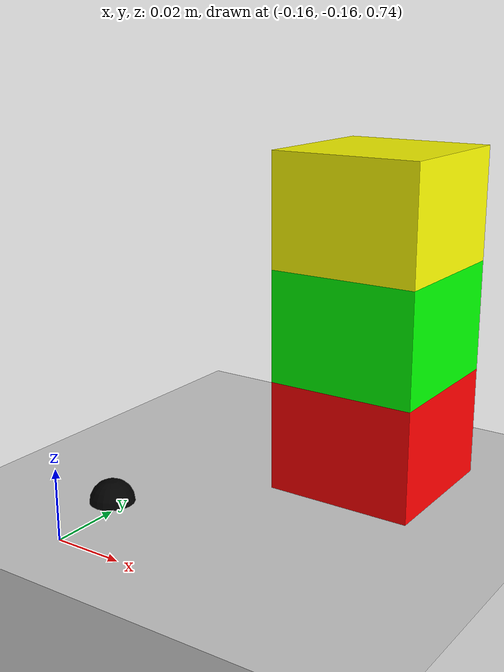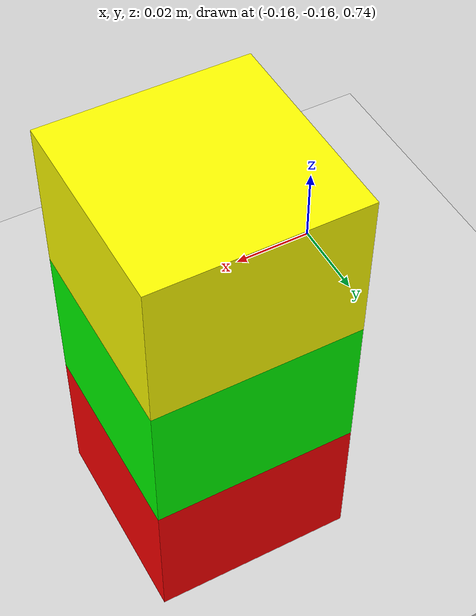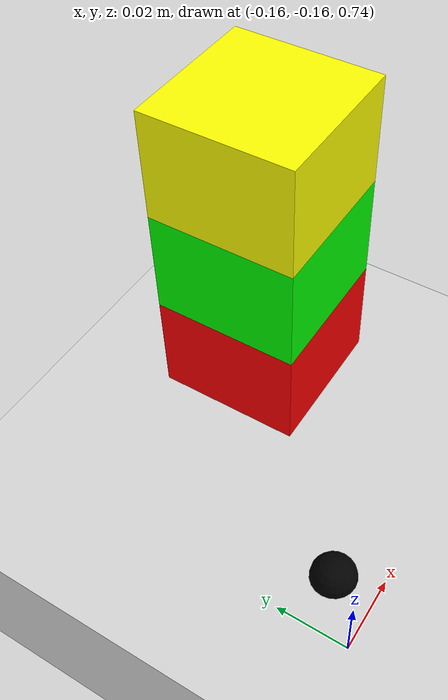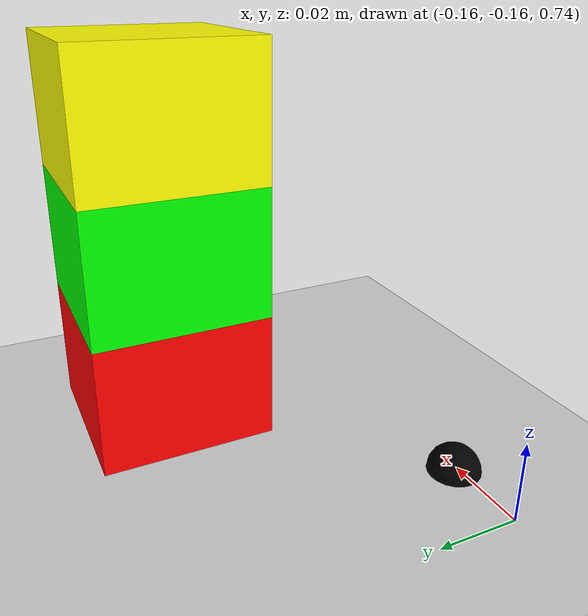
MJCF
<mujoco model="exp1_goal">
  <option timestep="0.01" gravity="0 0 -9.81"/>

  <worldbody>
    <light pos="0 0 2" dir="0 0 -1"/>

    <!-- Table: top surface at z = 0.75 (body center at 0.725 with thickness 0.05) -->
    <body name="table" pos="0 0 0.725">
      <geom name="table_geom" type="box" size="0.6 0.6 0.025" rgba="0.85 0.85 0.85 1"/>
    </body>

    <!-- Grid origin marker: (x0,y0) used to compute integer cell indices -->
    <body name="build_origin" pos="-0.15 -0.15 0.75">
      <geom type="sphere" size="0.006" rgba="0 0 0 1" contype="0" conaffinity="0"/>
    </body>

    <!-- Layer 1 -->
    <body name="block_red_01" pos="-0.10 -0.10 0.765">
      <geom type="box" size="0.02 0.02 0.015" rgba="1 0 0 1" contype="0" conaffinity="0"/>
    </body>

    <!-- Layer 2 -->
    <body name="block_green_01" pos="-0.10 -0.10 0.795">
      <geom type="box" size="0.02 0.02 0.015" rgba="0 1 0 1" contype="0" conaffinity="0"/>
    </body>

    <!-- Layer 3 -->
    <body name="block_yellow_01" pos="-0.10 -0.10 0.825">
      <geom type="box" size="0.02 0.02 0.015" rgba="1 1 0 1" contype="0" conaffinity="0"/>
    </body>

    <!-- Top-down camera -->
    <camera name="top" pos="-0.10 -0.10 1.30" quat="1 0 0 0" fovy="45"/>
  </worldbody>
</mujoco>
